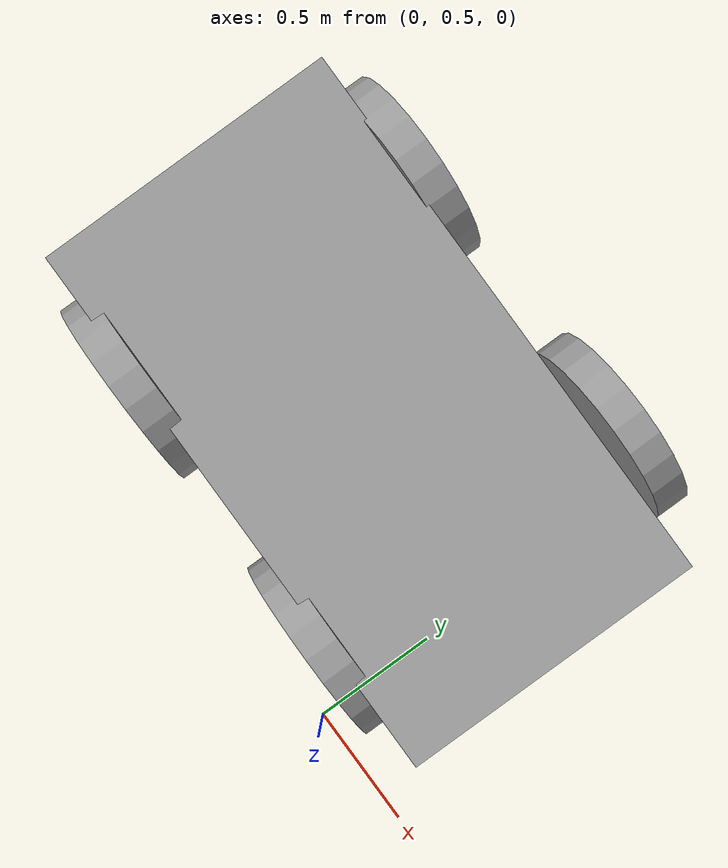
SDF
<?xml version='1.0'?>
<sdf version='1.7'>
  <model name='AMR_ROVBOYGT'>
    <link name='link_0_clone'>
      <inertial>
        <mass>0.328076</mass>
        <inertia>
          <ixx>0.0370482</ixx>
          <ixy>0</ixy>
          <ixz>0</ixz>
          <iyy>0.12497</iyy>
          <iyz>0</iyz>
          <izz>0.161051</izz>
        </inertia>
        <pose>0 0 0 0 -0 0</pose>
      </inertial>
      <pose>-0.818197 1.31909 0.676881 0 -0 0</pose>
      <self_collide>0</self_collide>
      <enable_wind>0</enable_wind>
      <kinematic>0</kinematic>
      <visual name='visual'>
        <pose>0 0 0 0 -0 0</pose>
        <geometry>
          <box>
            <size>2.13385 1.15647 0.132956</size>
          </box>
        </geometry>
        <material>
          <lighting>1</lighting>
          <script>
            <uri>file://media/materials/scripts/gazebo.material</uri>
            <name>Gazebo/Grey</name>
          </script>
          <shader type='pixel'/>
        </material>
        <transparency>0</transparency>
        <cast_shadows>1</cast_shadows>
      </visual>
      <collision name='collision'>
        <laser_retro>0</laser_retro>
        <max_contacts>10</max_contacts>
        <pose>0 0 0 0 -0 0</pose>
        <geometry>
          <box>
            <size>2.13385 1.15647 0.132956</size>
          </box>
        </geometry>
        <surface>
          <friction>
            <ode>
              <mu>1</mu>
              <mu2>1</mu2>
              <fdir1>0 0 0</fdir1>
              <slip1>0</slip1>
              <slip2>0</slip2>
            </ode>
            <torsional>
              <coefficient>1</coefficient>
              <patch_radius>0</patch_radius>
              <surface_radius>0</surface_radius>
              <use_patch_radius>1</use_patch_radius>
              <ode>
                <slip>0</slip>
              </ode>
            </torsional>
          </friction>
          <bounce>
            <restitution_coefficient>0</restitution_coefficient>
            <threshold>1e+06</threshold>
          </bounce>
          <contact>
            <collide_without_contact>0</collide_without_contact>
            <collide_without_contact_bitmask>1</collide_without_contact_bitmask>
            <collide_bitmask>1</collide_bitmask>
            <ode>
              <soft_cfm>0</soft_cfm>
              <soft_erp>0.2</soft_erp>
              <kp>1e+13</kp>
              <kd>1</kd>
              <max_vel>0.01</max_vel>
              <min_depth>0</min_depth>
            </ode>
            <bullet>
              <split_impulse>1</split_impulse>
              <split_impulse_penetration_threshold>-0.01</split_impulse_penetration_threshold>
              <soft_cfm>0</soft_cfm>
              <soft_erp>0.2</soft_erp>
              <kp>1e+13</kp>
              <kd>1</kd>
            </bullet>
          </contact>
        </surface>
      </collision>
    </link>
    <link name='link_1_clone_clone'>
      <inertial>
        <mass>0.0694067</mass>
        <inertia>
          <ixx>0.00244324</ixx>
          <ixy>0</ixy>
          <ixz>0</ixz>
          <iyy>0.00244324</iyy>
          <iyz>0</iyz>
          <izz>0.00469632</izz>
        </inertia>
        <pose>0 0 0 0 -0 0</pose>
      </inertial>
      <pose>-0.265289 0.706899 0.419046 1.53091 -0 0</pose>
      <self_collide>0</self_collide>
      <enable_wind>0</enable_wind>
      <kinematic>0</kinematic>
      <visual name='visual'>
        <pose>0 0 0 0 -0 0</pose>
        <geometry>
          <cylinder>
            <radius>0.367869</radius>
            <length>0.128214</length>
          </cylinder>
        </geometry>
        <material>
          <lighting>1</lighting>
          <script>
            <uri>file://media/materials/scripts/gazebo.material</uri>
            <name>Gazebo/Grey</name>
          </script>
          <shader type='pixel'/>
        </material>
        <transparency>0</transparency>
        <cast_shadows>1</cast_shadows>
      </visual>
      <collision name='collision'>
        <laser_retro>0</laser_retro>
        <max_contacts>10</max_contacts>
        <pose>0 0 0 0 -0 0</pose>
        <geometry>
          <cylinder>
            <radius>0.367869</radius>
            <length>0.128214</length>
          </cylinder>
        </geometry>
        <surface>
          <friction>
            <ode>
              <mu>1</mu>
              <mu2>1</mu2>
              <fdir1>0 0 0</fdir1>
              <slip1>0</slip1>
              <slip2>0</slip2>
            </ode>
            <torsional>
              <coefficient>1</coefficient>
              <patch_radius>0</patch_radius>
              <surface_radius>0</surface_radius>
              <use_patch_radius>1</use_patch_radius>
              <ode>
                <slip>0</slip>
              </ode>
            </torsional>
          </friction>
          <bounce>
            <restitution_coefficient>0</restitution_coefficient>
            <threshold>1e+06</threshold>
          </bounce>
          <contact>
            <collide_without_contact>0</collide_without_contact>
            <collide_without_contact_bitmask>1</collide_without_contact_bitmask>
            <collide_bitmask>1</collide_bitmask>
            <ode>
              <soft_cfm>0</soft_cfm>
              <soft_erp>0.2</soft_erp>
              <kp>1e+13</kp>
              <kd>1</kd>
              <max_vel>0.01</max_vel>
              <min_depth>0</min_depth>
            </ode>
            <bullet>
              <split_impulse>1</split_impulse>
              <split_impulse_penetration_threshold>-0.01</split_impulse_penetration_threshold>
              <soft_cfm>0</soft_cfm>
              <soft_erp>0.2</soft_erp>
              <kp>1e+13</kp>
              <kd>1</kd>
            </bullet>
          </contact>
        </surface>
      </collision>
    </link>
    <link name='link_1_clone_clone_0'>
      <inertial>
        <mass>0.0694067</mass>
        <inertia>
          <ixx>0.00244324</ixx>
          <ixy>0</ixy>
          <ixz>0</ixz>
          <iyy>0.00244324</iyy>
          <iyz>0</iyz>
          <izz>0.00469632</izz>
        </inertia>
        <pose>0 0 0 0 -0 0</pose>
      </inertial>
      <pose>-1.39399 0.7156 0.457975 1.53091 -0 0</pose>
      <self_collide>0</self_collide>
      <enable_wind>0</enable_wind>
      <kinematic>0</kinematic>
      <visual name='visual'>
        <pose>0 0 0 0 -0 0</pose>
        <geometry>
          <cylinder>
            <radius>0.367869</radius>
            <length>0.128214</length>
          </cylinder>
        </geometry>
        <material>
          <lighting>1</lighting>
          <script>
            <uri>file://media/materials/scripts/gazebo.material</uri>
            <name>Gazebo/Grey</name>
          </script>
          <shader type='pixel'/>
        </material>
        <transparency>0</transparency>
        <cast_shadows>1</cast_shadows>
      </visual>
      <collision name='collision'>
        <laser_retro>0</laser_retro>
        <max_contacts>10</max_contacts>
        <pose>0 0 0 0 -0 0</pose>
        <geometry>
          <cylinder>
            <radius>0.367869</radius>
            <length>0.128214</length>
          </cylinder>
        </geometry>
        <surface>
          <friction>
            <ode>
              <mu>1</mu>
              <mu2>1</mu2>
              <fdir1>0 0 0</fdir1>
              <slip1>0</slip1>
              <slip2>0</slip2>
            </ode>
            <torsional>
              <coefficient>1</coefficient>
              <patch_radius>0</patch_radius>
              <surface_radius>0</surface_radius>
              <use_patch_radius>1</use_patch_radius>
              <ode>
                <slip>0</slip>
              </ode>
            </torsional>
          </friction>
          <bounce>
            <restitution_coefficient>0</restitution_coefficient>
            <threshold>1e+06</threshold>
          </bounce>
          <contact>
            <collide_without_contact>0</collide_without_contact>
            <collide_without_contact_bitmask>1</collide_without_contact_bitmask>
            <collide_bitmask>1</collide_bitmask>
            <ode>
              <soft_cfm>0</soft_cfm>
              <soft_erp>0.2</soft_erp>
              <kp>1e+13</kp>
              <kd>1</kd>
              <max_vel>0.01</max_vel>
              <min_depth>0</min_depth>
            </ode>
            <bullet>
              <split_impulse>1</split_impulse>
              <split_impulse_penetration_threshold>-0.01</split_impulse_penetration_threshold>
              <soft_cfm>0</soft_cfm>
              <soft_erp>0.2</soft_erp>
              <kp>1e+13</kp>
              <kd>1</kd>
            </bullet>
          </contact>
        </surface>
      </collision>
    </link>
    <link name='link_1_clone_clone_1'>
      <inertial>
        <mass>0.0694067</mass>
        <inertia>
          <ixx>0.00244324</ixx>
          <ixy>0</ixy>
          <ixz>0</ixz>
          <iyy>0.00244324</iyy>
          <iyz>0</iyz>
          <izz>0.00469632</izz>
        </inertia>
        <pose>0 0 0 0 -0 0</pose>
      </inertial>
      <pose>-0.282232 1.99268 0.426221 1.53091 -0 0</pose>
      <self_collide>0</self_collide>
      <enable_wind>0</enable_wind>
      <kinematic>0</kinematic>
      <visual name='visual'>
        <pose>0 0 0 0 -0 0</pose>
        <geometry>
          <cylinder>
            <radius>0.367869</radius>
            <length>0.128214</length>
          </cylinder>
        </geometry>
        <material>
          <lighting>1</lighting>
          <script>
            <uri>file://media/materials/scripts/gazebo.material</uri>
            <name>Gazebo/Grey</name>
          </script>
          <shader type='pixel'/>
        </material>
        <transparency>0</transparency>
        <cast_shadows>1</cast_shadows>
      </visual>
      <collision name='collision'>
        <laser_retro>0</laser_retro>
        <max_contacts>10</max_contacts>
        <pose>0 0 0 0 -0 0</pose>
        <geometry>
          <cylinder>
            <radius>0.367869</radius>
            <length>0.128214</length>
          </cylinder>
        </geometry>
        <surface>
          <friction>
            <ode>
              <mu>1</mu>
              <mu2>1</mu2>
              <fdir1>0 0 0</fdir1>
              <slip1>0</slip1>
              <slip2>0</slip2>
            </ode>
            <torsional>
              <coefficient>1</coefficient>
              <patch_radius>0</patch_radius>
              <surface_radius>0</surface_radius>
              <use_patch_radius>1</use_patch_radius>
              <ode>
                <slip>0</slip>
              </ode>
            </torsional>
          </friction>
          <bounce>
            <restitution_coefficient>0</restitution_coefficient>
            <threshold>1e+06</threshold>
          </bounce>
          <contact>
            <collide_without_contact>0</collide_without_contact>
            <collide_without_contact_bitmask>1</collide_without_contact_bitmask>
            <collide_bitmask>1</collide_bitmask>
            <ode>
              <soft_cfm>0</soft_cfm>
              <soft_erp>0.2</soft_erp>
              <kp>1e+13</kp>
              <kd>1</kd>
              <max_vel>0.01</max_vel>
              <min_depth>0</min_depth>
            </ode>
            <bullet>
              <split_impulse>1</split_impulse>
              <split_impulse_penetration_threshold>-0.01</split_impulse_penetration_threshold>
              <soft_cfm>0</soft_cfm>
              <soft_erp>0.2</soft_erp>
              <kp>1e+13</kp>
              <kd>1</kd>
            </bullet>
          </contact>
        </surface>
      </collision>
    </link>
    <link name='link_1_clone_clone_2'>
      <inertial>
        <mass>0.0694067</mass>
        <inertia>
          <ixx>0.00244324</ixx>
          <ixy>0</ixy>
          <ixz>0</ixz>
          <iyy>0.00244324</iyy>
          <iyz>0</iyz>
          <izz>0.00469632</izz>
        </inertia>
        <pose>0 0 0 0 -0 0</pose>
      </inertial>
      <pose>-1.44671 1.93619 0.421125 1.53091 -0 0</pose>
      <self_collide>0</self_collide>
      <enable_wind>0</enable_wind>
      <kinematic>0</kinematic>
      <visual name='visual'>
        <pose>0 0 0 0 -0 0</pose>
        <geometry>
          <cylinder>
            <radius>0.367869</radius>
            <length>0.128214</length>
          </cylinder>
        </geometry>
        <material>
          <lighting>1</lighting>
          <script>
            <uri>file://media/materials/scripts/gazebo.material</uri>
            <name>Gazebo/Grey</name>
          </script>
          <shader type='pixel'/>
        </material>
        <transparency>0</transparency>
        <cast_shadows>1</cast_shadows>
      </visual>
      <collision name='collision'>
        <laser_retro>0</laser_retro>
        <max_contacts>10</max_contacts>
        <pose>0 0 0 0 -0 0</pose>
        <geometry>
          <cylinder>
            <radius>0.367869</radius>
            <length>0.128214</length>
          </cylinder>
        </geometry>
        <surface>
          <friction>
            <ode>
              <mu>1</mu>
              <mu2>1</mu2>
              <fdir1>0 0 0</fdir1>
              <slip1>0</slip1>
              <slip2>0</slip2>
            </ode>
            <torsional>
              <coefficient>1</coefficient>
              <patch_radius>0</patch_radius>
              <surface_radius>0</surface_radius>
              <use_patch_radius>1</use_patch_radius>
              <ode>
                <slip>0</slip>
              </ode>
            </torsional>
          </friction>
          <bounce>
            <restitution_coefficient>0</restitution_coefficient>
            <threshold>1e+06</threshold>
          </bounce>
          <contact>
            <collide_without_contact>0</collide_without_contact>
            <collide_without_contact_bitmask>1</collide_without_contact_bitmask>
            <collide_bitmask>1</collide_bitmask>
            <ode>
              <soft_cfm>0</soft_cfm>
              <soft_erp>0.2</soft_erp>
              <kp>1e+13</kp>
              <kd>1</kd>
              <max_vel>0.01</max_vel>
              <min_depth>0</min_depth>
            </ode>
            <bullet>
              <split_impulse>1</split_impulse>
              <split_impulse_penetration_threshold>-0.01</split_impulse_penetration_threshold>
              <soft_cfm>0</soft_cfm>
              <soft_erp>0.2</soft_erp>
              <kp>1e+13</kp>
              <kd>1</kd>
            </bullet>
          </contact>
        </surface>
      </collision>
    </link>
    <static>0</static>
    <allow_auto_disable>1</allow_auto_disable>
  </model>
</sdf>
